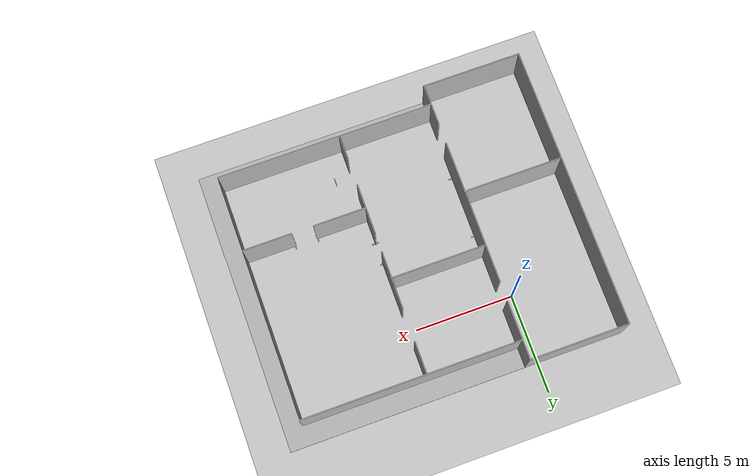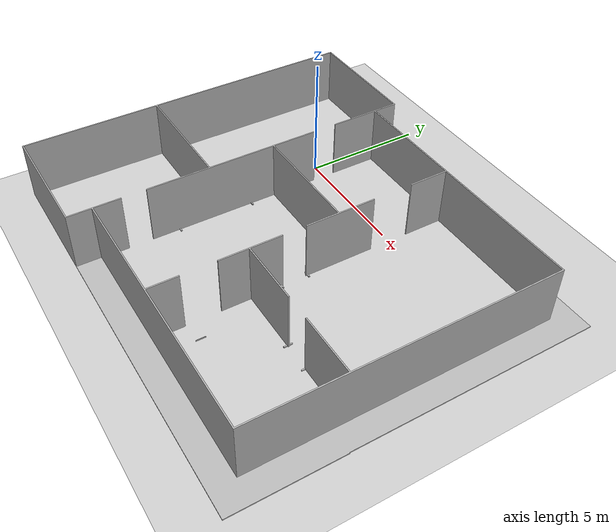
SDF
<?xml version="1.0"?>
<sdf version="1.6">
  <world name="rwc2015_empty">
    <light name="sun" type="directional">
      <direction>0.5 0.1 -0.9</direction>
      <pose>0 0 10 0 0 0</pose>
      <specular>0.2 0.2 0.2 1</specular>
      <cast_shadows>true</cast_shadows>
      <diffuse>0.8 0.8 0.8 1</diffuse>
      <attenuation>
        <range>1000</range>
        <quadratic>0.001</quadratic>
        <constant>0.9</constant>
        <linear>0.01</linear>
      </attenuation>
    </light>
    <model name="initial_pose" type="waypoint">
      <pose>0 0 0 0 0 0</pose>
      <static>true</static>
    </model>
    <model name="initial_pose_door_B" type="waypoint">
      <pose>0 0 0 0 0 0</pose>
      <static>true</static>
    </model>
    <model name="initial_pose_door_A" type="waypoint">
      <pose>0 -6.15 0 0 0 0.0</pose>
      <static>true</static>
    </model>
    <model name="exit_door_B1" type="waypoint">
      <pose>-1.0 0 0 0 0 3.1415</pose>
      <static>true</static>
    </model>
    <model name="exit_door_B2" type="waypoint">
      <pose>-2.0 0 0 0 0 3.1415</pose>
      <static>true</static>
    </model>
    <model name="exit_door_B3" type="waypoint">
      <pose>1.0 0 0 0 0 3.1415</pose>
      <static>true</static>
    </model>
    <model name="exit_door_A1" type="waypoint">
      <pose>-1.0 -6.15 0 0 0 3.1415</pose>
      <static>true</static>
    </model>
    <model name="exit_door_A2" type="waypoint">
      <pose>-2.0 -6.15 0 0 0 3.1415</pose>
      <static>true</static>
    </model>
    <model name="exit_door_A3" type="waypoint">
      <pose>1.0 -6.15 0 0 0 3.1415</pose>
      <static>true</static>
    </model>
    <model name="entry_point_B" type="waypoint">
      <pose>1.0 0 0 0 0 0</pose>
      <static>true</static>
    </model>
    <model name="entry_point_A" type="waypoint">
      <pose>1.0 -6.15 0 0 0 0</pose>
      <static>true</static>
    </model>
    <model name="operator_pose" type="waypoint">
      <pose>9.0 -1.0 0 0 0 0.0</pose>
      <static>true</static>
    </model>
    <model name="explore1" type="waypoint">
      <pose>2.0 0.0 0 0 0 1.57</pose>
      <static>true</static>
    </model>
    <model name="explore2" type="waypoint">
      <pose>3.0 0.0 0 0 0 -1.57</pose>
      <static>true</static>
    </model>
    <model name="explore3" type="waypoint">
      <pose>5.0 0.0 0 0 0 0.0</pose>
      <static>true</static>
    </model>
    <model name="explore4" type="waypoint">
      <pose>7.0 -1.0 0 0 0 -1.57</pose>
      <static>true</static>
    </model>
    <model name="explore5" type="waypoint">
      <pose>8.0 -2.0 0 0 0 0.0</pose>
      <static>true</static>
    </model>
    <model name="explore6" type="waypoint">
      <pose>8.0 -3.0 0 0 0 3.14</pose>
      <static>true</static>
    </model>
    <model name="explore7" type="waypoint">
      <pose>8.5 -4.0 0 0 0 -1.57</pose>
      <static>true</static>
    </model>
    <model name="explore8" type="waypoint">
      <pose>8.0 -7.0 0 0 0 0.0</pose>
      <static>true</static>
    </model>
    <model name="explore9" type="waypoint">
      <pose>8.0 -8.0 0 0 0 -1.57</pose>
      <static>true</static>
    </model>
    <model name="explore10" type="waypoint">
      <pose>3.0 -8.0 0 0 0 3.14</pose>
      <static>true</static>
    </model>
    <model name="explore11" type="waypoint">
      <pose>3.0 -8.0 0 0 0 1.57</pose>
      <static>true</static>
    </model>
    <model name="kitchen" type="room">
      <link name="in">
        <virtual_volume name="in_vv">
          <geometry>
            <box>
              <size>4.7 4.8 0</size>
            </box>
          </geometry>
          <pose>0.0 0.0 0.0 0 0 0</pose>
        </virtual_volume>
      </link>
      <pose>2.95 0 0 0 0 0</pose>
      <static>true</static>
    </model>
    <model name="livingroom" type="room">
      <link name="in">
        <virtual_volume name="in_vv">
          <geometry>
            <box>
              <size>-6.2 -8.45 0</size>
            </box>
          </geometry>
          <pose>0.0 0.0 0.0 0 0 0</pose>
        </virtual_volume>
      </link>
      <pose>8.5 -1.825 0 0 0 0</pose>
      <static>true</static>
    </model>
    <model name="bedroom" type="room">
      <link name="in">
        <virtual_volume name="in_vv">
          <geometry>
            <box>
              <size>6.2 3.45 0</size>
            </box>
          </geometry>
          <pose>0.0 0.0 0.0 0 0 0</pose>
        </virtual_volume>
      </link>
      <pose>8.5 -7.825 0 0 0 0</pose>
      <static>true</static>
    </model>
    <model name="hallway" type="room">
      <link name="in">
        <virtual_volume name="in_vv">
          <geometry>
            <box>
              <size>4.75 7.55 0</size>
            </box>
          </geometry>
          <pose>0.0 0.0 0.0 0 0 0</pose>
        </virtual_volume>
      </link>
      <pose>2.975 -6.175 0 0 0 0</pose>
      <static>true</static>
    </model>
    <include>
      <pose>0 0 0 0 0 0</pose>
      <name>walls</name>
      <uri>model://rwc2015/walls</uri>
    </include>
    <include>
      <pose>0 0 0 0 0 0</pose>
      <name>floor</name>
      <uri>model://ground_plane</uri>
    </include>
    <physics type="ode">
      <real_time_update_rate>333.0</real_time_update_rate>
      <max_step_size>0.003</max_step_size>
      <ode>
        <constraints>
          <cfm>0.0001</cfm>
        </constraints>
        <solver>
          <type>quick</type>
          <iters>100</iters>
        </solver>
      </ode>
    </physics>
  </world>
</sdf>

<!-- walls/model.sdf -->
<sdf version="1.6">
  <model name="rwc2015/walls">
    <link name="1_link">
      <collision name="1_col">
        <geometry>
          <mesh>
            <uri>model://rwc2015/walls/heightmap_arenaa.stl</uri>
          </mesh>
        </geometry>
      </collision>
      <visual name="1_vis">
        <geometry>
          <mesh>
            <uri>model://rwc2015/walls/heightmap_arenaa.stl</uri>
          </mesh>
        </geometry>
      </visual>
      <pose>0 0 0 0 0 0</pose>
    </link>
    <static>true</static>
  </model>
</sdf>
